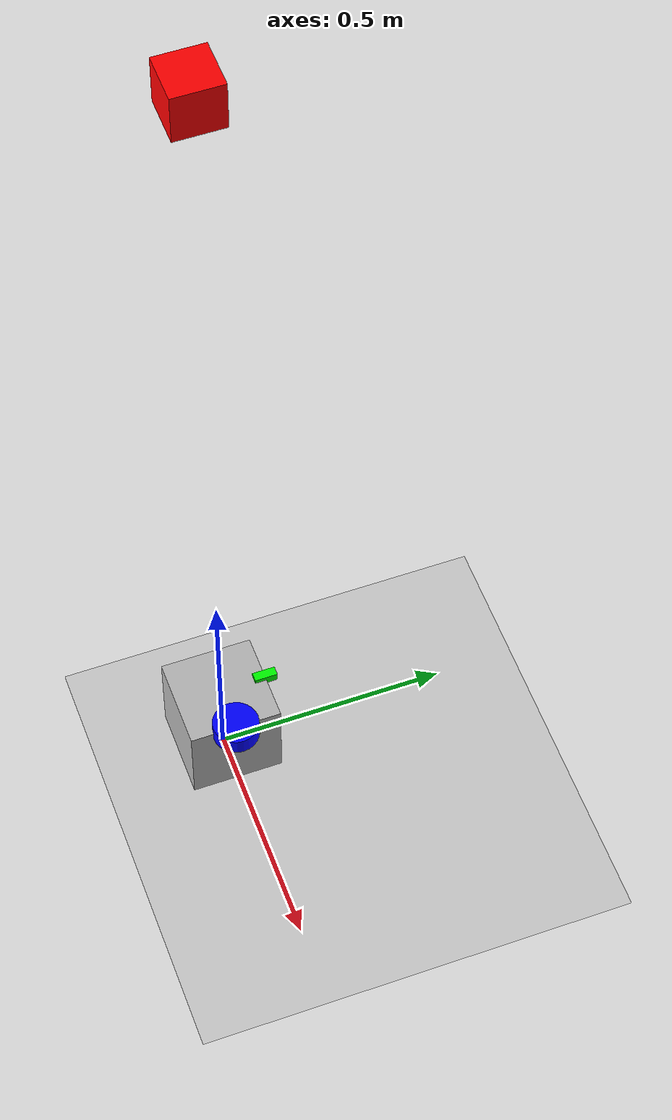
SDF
<?xml version="1.0" ?>
<sdf version="1.6">
  <world name="empty_world">
    <include>
      <uri>model://sun</uri>
    </include>
    <include>
      <uri>model://ground_plane</uri>
    </include>

    <model name="falling_box">
      <pose>0 0 2 0 0 0</pose> <!-- Position the box 2 meters above the ground -->
      <link name="box_link">
        <inertial>
          <mass>0.5</mass>
          <inertia>
            <ixx>0.001</ixx>
            <ixy>0</ixy>
            <ixz>0</ixz>
            <iyy>0.001</iyy>
            <iyz>0</iyz>
            <izz>0.001</izz>
          </inertia>
        </inertial>
        <visual>
          <geometry>
            <box>
              <size>0.1 0.1 0.1</size>
            </box>
          </geometry>
          <material>
            <ambient>1 0 0 1</ambient>
            <diffuse>1 0 0 1</diffuse>
          </material>
        </visual>
        <collision>
          <geometry>
            <box>
              <size>0.1 0.1 0.1</size>
            </box>
          </geometry>
        </collision>
      </link>
    </model>

    <include>
      <uri>model://simple_robot</uri>
      <pose>0 0 0.1 0 0 0</pose> <!-- Position the robot on the ground plane -->
    </include>

  </world>
</sdf>

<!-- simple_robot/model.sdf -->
<sdf version="1.6">
  <model name="simple_robot">
    <link name="base_link">
      <inertial>
        <mass>1.0</mass>
        <inertia>
          <ixx>0.001</ixx>
          <ixy>0</ixy>
          <ixz>0</ixz>
          <iyy>0.001</iyy>
          <iyz>0</iyz>
          <izz>0.001</izz>
        </inertia>
      </inertial>
      <visual>
        <geometry>
          <box>
            <size>0.2 0.2 0.2</size>
          </box>
        </geometry>
      </visual>
      <collision>
        <geometry>
          <box>
            <size>0.2 0.2 0.2</size>
          </box>
        </geometry>
      </collision>
    </link>

    <link name="lidar_link">
      <pose>0.1 0 0.1 0 0 0</pose> <!-- Position relative to base_link -->
      <inertial>
        <mass>0.1</mass>
        <inertia>
          <ixx>0.0001</ixx>
          <ixy>0</ixy>
          <ixz>0</ixz>
          <iyy>0.0001</iyy>
          <iyz>0</iyz>
          <izz>0.0001</izz>
        </inertia>
      </inertial>
      <visual>
        <geometry>
          <cylinder>
            <radius>0.05</radius>
            <length>0.04</length>
          </cylinder>
        </geometry>
        <material>
          <ambient>0 0 1 1</ambient>
          <diffuse>0 0 1 1</diffuse>
        </material>
      </visual>
      <collision>
        <geometry>
          <cylinder>
            <radius>0.05</radius>
            <length>0.04</length>
          </cylinder>
        </geometry>
      </collision>
    </link>

    <joint name="base_to_lidar_joint" type="fixed">
      <parent>base_link</parent>
      <child>lidar_link</child>
    </joint>

    <plugin name="gazebo_ros_lidar_controller" filename="libgazebo_ros_laser.so">
      <topicName>/scan</topicName>
      <frameName>lidar_link</frameName>
      <horizontal>
        <samples>640</samples>
        <resolution>1</resolution>
        <min_angle>-1.570796</min_angle>
        <max_angle>1.570796</max_angle>
      </horizontal>
      <vertical>
        <samples>1</samples>
        <resolution>1</resolution>
        <min_angle>0</min_angle>
        <max_angle>0</max_angle>
      </vertical>
      <range>
        <min>0.08</min>
        <max>10.0</max>
        <resolution>0.01</resolution>
      </range>
      <noise>
        <type>gaussian</type>
        <mean>0.0</mean>
        <stddev>0.01</stddev>
      </noise>
      <ros>
        <remapping>~/out:=/scan</remapping>
      </ros>
    </plugin>

    <link name="camera_link">
      <pose>0 0.1 0.1 0 0 0</pose> <!-- Position relative to base_link -->
      <inertial>
        <mass>0.1</mass>
        <inertia>
          <ixx>0.0001</ixx>
          <ixy>0</ixy>
          <ixz>0</ixz>
          <iyy>0.0001</iyy>
          <iyz>0</iyz>
          <izz>0.0001</izz>
        </inertia>
      </inertial>
      <visual>
        <geometry>
          <box>
            <size>0.02 0.05 0.02</size>
          </box>
        </geometry>
        <material>
          <ambient>0 1 0 1</ambient>
          <diffuse>0 1 0 1</diffuse>
        </material>
      </visual>
      <collision>
        <geometry>
          <box>
            <size>0.02 0.05 0.02</size>
          </box>
        </geometry>
      </collision>
    </link>

    <joint name="base_to_camera_joint" type="fixed">
      <parent>base_link</parent>
      <child>camera_link</child>
    </joint>

    <plugin name="camera_controller" filename="libgazebo_ros_camera.so">
      <alwaysOn>true</alwaysOn>
      <updateRate>30.0</updateRate>
      <cameraName>camera</cameraName>
      <imageTopicName>image_raw</imageTopicName>
      <cameraInfoTopicName>camera_info</cameraInfoTopicName>
      <frameName>camera_link</frameName>
      <hackBaseline>0.07</hackBaseline>
      <distortionK1>0.0</distortionK1>
      <distortionK2>0.0</distortionK2>
      <distortionK3>0.0</distortionK3>
      <distortionT1>0.0</distortionT1>
      <distortionT2>0.0</distortionT2>
      <Cx>320</Cx>
      <Cy>240</Cy>
      <Fx>277.1935</Fx>
      <Fy>277.1935</Fy>
      <ros>
        <namespace></namespace>
        <remapping>~/image_raw:=/camera/image_raw</remapping>
        <remapping>~/camera_info:=/camera/camera_info</remapping>
      </ros>
    </plugin>

    <link name="imu_link">
      <pose>0 0 0.1 0 0 0</pose> <!-- Position relative to base_link -->
      <inertial>
        <mass>0.01</mass>
        <inertia>
          <ixx>0.000001</ixx>
          <ixy>0</ixy>
          <ixz>0</ixz>
          <iyy>0.000001</iyy>
          <iyz>0</iyz>
          <izz>0.000001</izz>
        </inertia>
      </inertial>
      <visual>
        <geometry>
          <box>
            <size>0.01 0.01 0.01</size>
          </box>
        </geometry>
        <material>
          <ambient>1 0 1 1</ambient>
          <diffuse>1 0 1 1</diffuse>
        </material>
      </visual>
      <collision>
        <geometry>
          <box>
            <size>0.01 0.01 0.01</size>
          </box>
        </geometry>
      </collision>
    </link>

    <joint name="base_to_imu_joint" type="fixed">
      <parent>base_link</parent>
      <child>imu_link</child>
    </joint>

    <plugin name="imu_plugin" filename="libgazebo_ros_imu_sensor.so">
      <ros>
        <namespace></namespace>
        <remapping>~/out:=/imu/data</remapping>
      </ros>
      <initialOrientationAsReference>false</initialOrientationAsReference>
      <update_rate>100.0</update_rate>
      <imu>
        <noise>
          <type>gaussian</type>
          <mean>0.0</mean>
          <stddev>2e-4</stddev>
        </noise>
        <gyroscope>
          <noise>
            <type>gaussian</type>
            <mean>0.0</mean>
            <stddev>2e-4</stddev>
          </noise>
        </gyroscope>
        <accelerometer>
          <noise>
            <type>gaussian</type>
            <mean>0.0</mean>
            <stddev>1.7e-2</stddev>
          </noise>
        </accelerometer>
      </imu>
    </plugin>
  </model>
</sdf>
